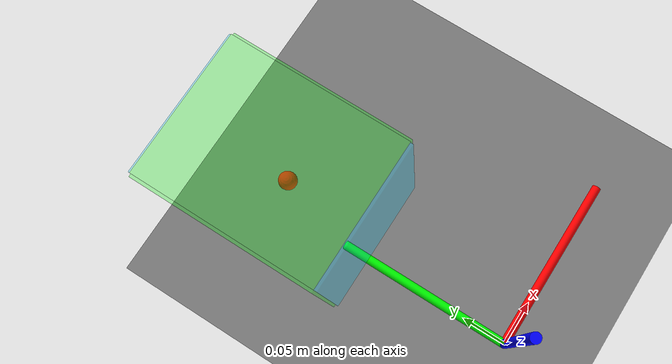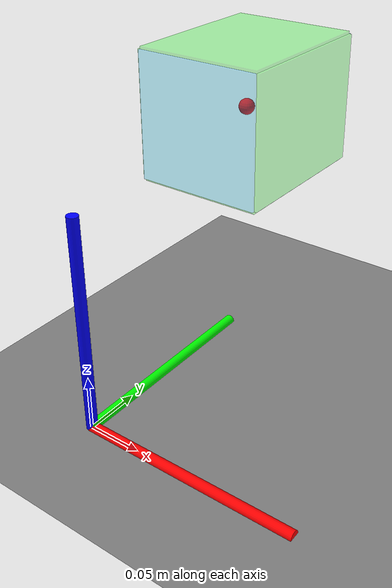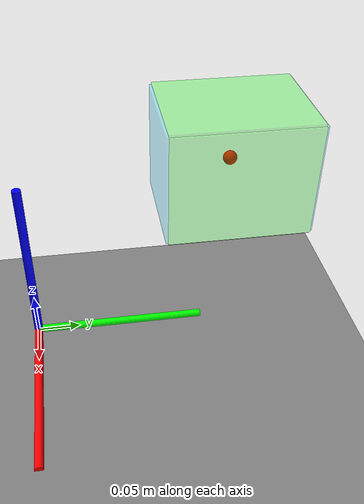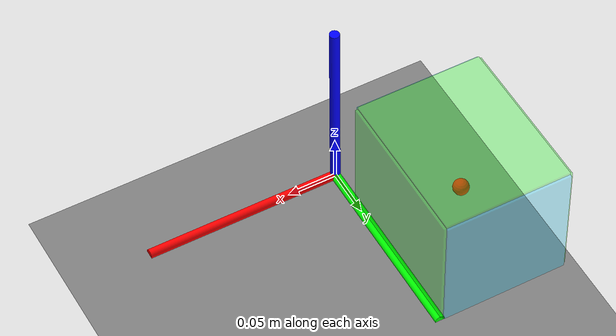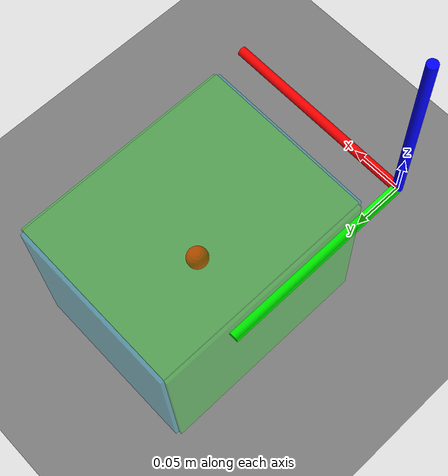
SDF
<?xml version="1.0"?>
<sdf version="1.8">
  <world name="rl_training_world">

    <!-- Physics settings optimized for RL training -->
    <physics name="default_physics" default="true" type="ode">
      <max_step_size>0.001</max_step_size>  <!-- 1ms timestep -->
      <real_time_factor>1.0</real_time_factor>
      <real_time_update_rate>1000</real_time_update_rate>  <!-- 1000 Hz -->

      <ode>
        <solver>
          <type>quick</type>
          <iters>50</iters>
          <sor>1.3</sor>
        </solver>
        <constraints>
          <cfm>0.0</cfm>
          <erp>0.2</erp>
          <contact_max_correcting_vel>100.0</contact_max_correcting_vel>
          <contact_surface_layer>0.001</contact_surface_layer>
        </constraints>
      </ode>
    </physics>

    <!-- Scene settings -->
    <scene>
      <ambient>0.8 0.8 0.8 1.0</ambient>
      <background>0.7 0.7 0.7 1.0</background>
      <shadows>true</shadows>
      <grid>true</grid>
    </scene>

    <!-- Sun light -->
    <light type="directional" name="sun">
      <cast_shadows>true</cast_shadows>
      <pose>0 0 10 0 0 0</pose>
      <diffuse>0.8 0.8 0.8 1</diffuse>
      <specular>0.2 0.2 0.2 1</specular>
      <attenuation>
        <range>1000</range>
        <constant>0.9</constant>
        <linear>0.01</linear>
        <quadratic>0.001</quadratic>
      </attenuation>
      <direction>-0.5 0.1 -0.9</direction>
    </light>

    <!-- Additional lighting for better visualization -->
    <light name="user_light" type="directional">
      <pose>2 2 4 0 0 0</pose>
      <diffuse>0.5 0.5 0.5 1</diffuse>
      <specular>0.1 0.1 0.1 1</specular>
      <direction>-0.5 -0.5 -1</direction>
      <cast_shadows>false</cast_shadows>
    </light>

    <!-- Ground plane -->
    <model name="ground_plane">
      <static>true</static>
      <link name="link">
        <collision name="collision">
          <geometry>
            <plane>
              <normal>0 0 1</normal>
              <size>20 20</size>
            </plane>
          </geometry>
          <surface>
            <friction>
              <ode>
                <mu>1.0</mu>
                <mu2>1.0</mu2>
              </ode>
            </friction>
          </surface>
        </collision>
        <visual name="visual">
          <geometry>
            <plane>
              <normal>0 0 1</normal>
              <size>20 20</size>
            </plane>
          </geometry>
          <material>
            <ambient>0.5 0.5 0.5 1</ambient>
            <diffuse>0.5 0.5 0.5 1</diffuse>
          </material>
        </visual>
      </link>
    </model>

    <!-- World Coordinate Frame at Origin (RGB = XYZ) -->
    <model name="world_frame">
      <static>true</static>
      <pose>0 0 0 0 0 0</pose>

      <!-- X axis (Red) -->
      <link name="x_axis">
        <pose>0.1 0 0 0 1.5708 0</pose>
        <visual name="x_visual">
          <geometry>
            <cylinder>
              <radius>0.005</radius>
              <length>0.2</length>
            </cylinder>
          </geometry>
          <material>
            <ambient>1 0 0 1</ambient>
            <diffuse>1 0 0 1</diffuse>
          </material>
        </visual>
      </link>

      <!-- Y axis (Green) -->
      <link name="y_axis">
        <pose>0 0.1 0 1.5708 0 0</pose>
        <visual name="y_visual">
          <geometry>
            <cylinder>
              <radius>0.005</radius>
              <length>0.2</length>
            </cylinder>
          </geometry>
          <material>
            <ambient>0 1 0 1</ambient>
            <diffuse>0 1 0 1</diffuse>
          </material>
        </visual>
      </link>

      <!-- Z axis (Blue) -->
      <link name="z_axis">
        <pose>0 0 0.1 0 0 0</pose>
        <visual name="z_visual">
          <geometry>
            <cylinder>
              <radius>0.005</radius>
              <length>0.2</length>
            </cylinder>
          </geometry>
          <material>
            <ambient>0 0 1 1</ambient>
            <diffuse>0 0 1 1</diffuse>
          </material>
        </visual>
      </link>
    </model>

    <!-- Include Drawing Surface Model (3D Workspace Visualization) -->
    <!-- NARROWED workspace (12x15x12 cm): X=±6cm, Y=-30 to -15cm, Z=16-28cm -->
    <include>
      <uri>model://drawing_surface</uri>
      <name>drawing_surface</name>
      <pose>0 0 0 0 0 0</pose>  <!-- Model has its own positioning -->
    </include>

    <!-- Target Sphere Model - Initial position at center of workspace -->
    <model name="target_sphere">
      <static>true</static>
      <pose>0 0.225 0.22 0 0 0</pose>  <!-- Center of +Y workspace -->

      <link name="sphere_link">
        <pose>0 0 0 0 0 0</pose>
        <visual name="visual">
          <geometry>
            <sphere>
              <radius>0.0075</radius>
            </sphere>
          </geometry>
          <material>
            <ambient>1.0 0.0 0.0 1.0</ambient>
            <diffuse>1.0 0.0 0.0 1.0</diffuse>
          </material>
        </visual>
      </link>
    </model>

    <!-- GUI settings for better view of workspace -->
    <gui fullscreen='false'>
      <camera name='user_camera'>
        <!-- Position camera to view robot and drawing surface -->
        <pose>0.6 -0.5 0.5 0 0.4 0.8</pose>
        <view_controller>orbit</view_controller>
        <projection_type>perspective</projection_type>
      </camera>
    </gui>

  </world>
</sdf>

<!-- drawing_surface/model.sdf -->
<sdf version="1.8">
  <model name="drawing_surface">
    <!-- 3D Workspace Visualization Box -->
    <pose>0 0 0 0 0 0</pose>
    <static>true</static>

    <!-- Workspace bounds (green wireframe) -->

    <!-- Top border (Z = 28cm) -->
    <link name="top_border">
      <pose>0 0.225 0.28 0 0 0</pose>
      <visual name="top_border_visual">
        <geometry>
          <box>
            <size>0.12 0.15 0.005</size>  <!-- 12cm x 15cm x 0.5cm -->
          </box>
        </geometry>
        <material>
          <ambient>0.0 1.0 0.0 0.3</ambient>
          <diffuse>0.0 1.0 0.0 0.3</diffuse>
        </material>
      </visual>
    </link>

    <!-- Bottom border (Z = 16cm) -->
    <link name="bottom_border">
      <pose>0 0.225 0.16 0 0 0</pose>
      <visual name="bottom_border_visual">
        <geometry>
          <box>
            <size>0.12 0.15 0.005</size>
          </box>
        </geometry>
        <material>
          <ambient>0.0 1.0 0.0 0.3</ambient>
          <diffuse>0.0 1.0 0.0 0.3</diffuse>
        </material>
      </visual>
    </link>

    <!-- Left border (X = -6cm) -->
    <link name="left_border">
      <pose>-0.06 0.225 0.22 0 0 0</pose>
      <visual name="left_border_visual">
        <geometry>
          <box>
            <size>0.005 0.15 0.12</size>  <!-- 0.5cm x 15cm x 12cm -->
          </box>
        </geometry>
        <material>
          <ambient>0.0 1.0 0.0 0.3</ambient>
          <diffuse>0.0 1.0 0.0 0.3</diffuse>
        </material>
      </visual>
    </link>

    <!-- Right border (X = +6cm) -->
    <link name="right_border">
      <pose>0.06 0.225 0.22 0 0 0</pose>
      <visual name="right_border_visual">
        <geometry>
          <box>
            <size>0.005 0.15 0.12</size>
          </box>
        </geometry>
        <material>
          <ambient>0.0 1.0 0.0 0.3</ambient>
          <diffuse>0.0 1.0 0.0 0.3</diffuse>
        </material>
      </visual>
    </link>

    <!-- Front border (Y = -15cm, closer to robot) -->
    <link name="front_border">
      <pose>0 0.15 0.22 0 0 0</pose>
      <visual name="front_border_visual">
        <geometry>
          <box>
            <size>0.12 0.005 0.12</size>
          </box>
        </geometry>
        <material>
          <ambient>0.0 0.8 1.0 0.3</ambient>  <!-- Cyan for front -->
          <diffuse>0.0 0.8 1.0 0.3</diffuse>
        </material>
      </visual>
    </link>

    <!-- Back border (Y = -30cm, further from robot) -->
    <link name="back_border">
      <pose>0 0.30 0.22 0 0 0</pose>
      <visual name="back_border_visual">
        <geometry>
          <box>
            <size>0.12 0.005 0.12</size>
          </box>
        </geometry>
        <material>
          <ambient>0.0 0.8 1.0 0.3</ambient>  <!-- Cyan for back -->
          <diffuse>0.0 0.8 1.0 0.3</diffuse>
        </material>
      </visual>
    </link>

    <!-- Center marker for reference -->
    <link name="center_marker">
      <pose>0 0.225 0.22 0 0 0</pose>
      <visual name="center_marker_visual">
        <geometry>
          <sphere>
            <radius>0.005</radius>
          </sphere>
        </geometry>
        <material>
          <ambient>0.0 0.0 1.0 1.0</ambient>  <!-- Blue -->
          <diffuse>0.0 0.0 1.0 1.0</diffuse>
        </material>
      </visual>
    </link>

  </model>
</sdf>
